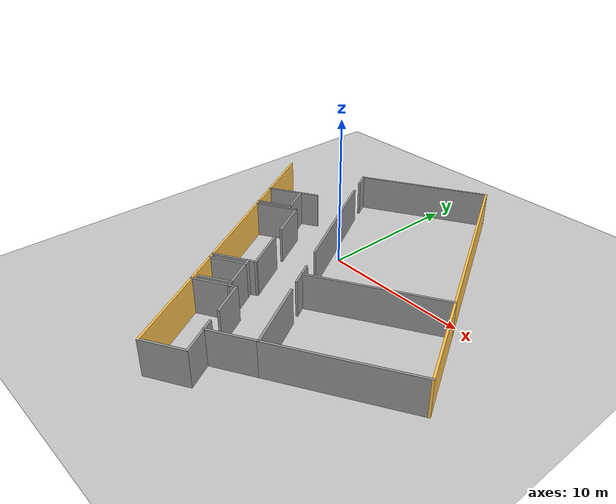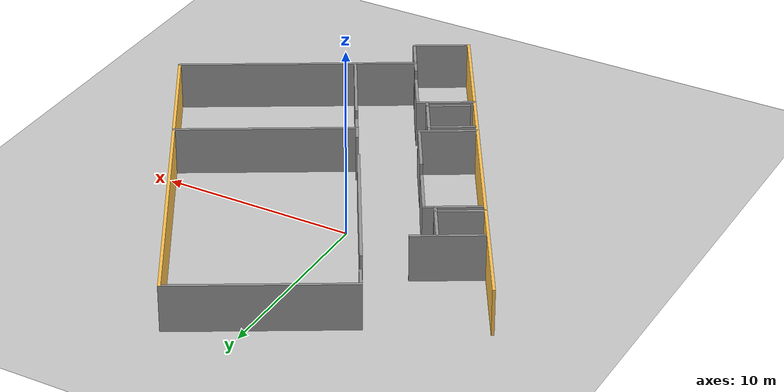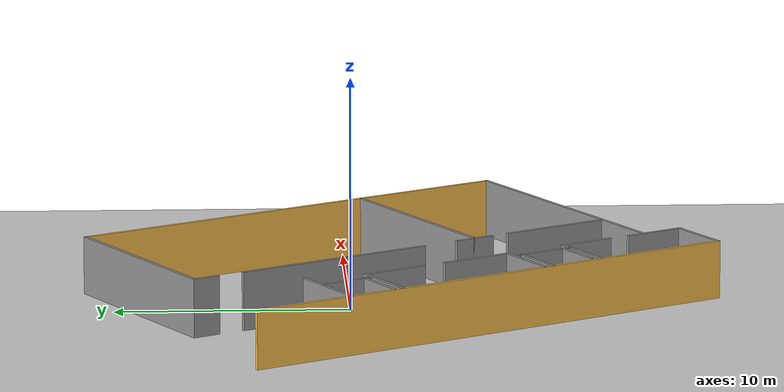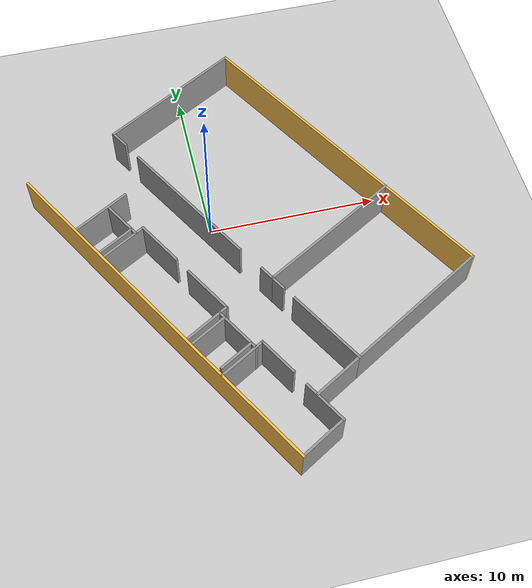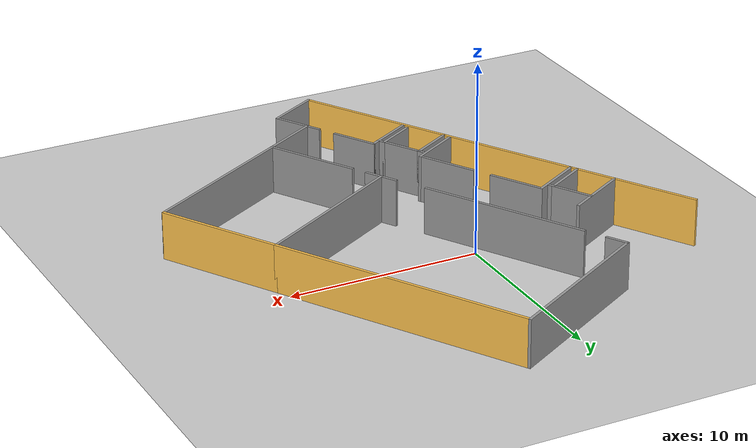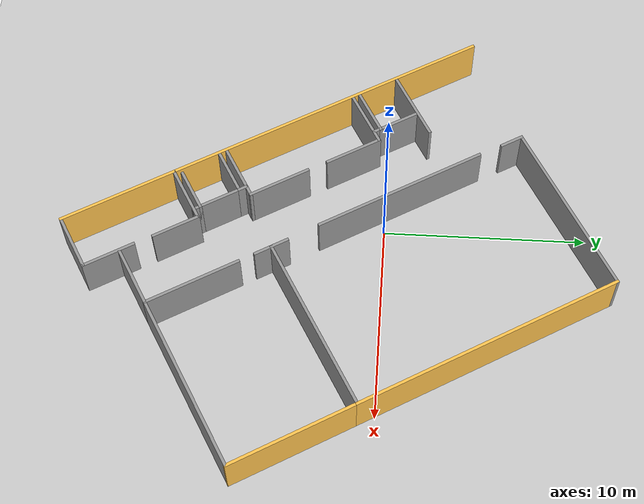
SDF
<sdf version="1.6">
 <world name="default">
  <light name="sun" type="directional">
   <pose>0 0 10 0 -0 0</pose>
   <diffuse>0.8 0.8 0.8 1</diffuse>
   <specular>0.1 0.1 0.1 1</specular>
   <attenuation>
    <range>1000</range>
    <constant>0.9</constant>
    <linear>0.01</linear>
    <quadratic>0.001</quadratic>
   </attenuation>
   <direction>-0.5 0.5 -1</direction>
  </light>
  <model name="ground_plane">
   <static>1</static>
   <link name="link">
    <collision name="collision">
     <geometry><plane><normal>0 0 1</normal><size>100 100</size></plane></geometry>
     <surface><friction><ode><mu>100</mu><mu2>50</mu2></ode></friction></surface>
    </collision>
    <visual name="visual">
     <cast_shadows>0</cast_shadows>
     <geometry><plane><normal>0 0 1</normal><size>100 100</size></plane></geometry>
     <material>
      <script><uri>file://media/materials/scripts/gazebo.material</uri><name>Gazebo/Grey</name></script>
     </material>
    </visual>
   </link>
  </model>
  <gravity>0 0 -9.8</gravity>
  <magnetic_field>6e-06 2.3e-05 -4.2e-05</magnetic_field>
  <atmosphere type="adiabatic"/>
  <physics name="default_physics" default="0" type="ode">
   <max_step_size>0.001</max_step_size>
   <real_time_factor>1</real_time_factor>
   <real_time_update_rate>1000</real_time_update_rate>
  </physics>
  <scene><ambient>0.4 0.4 0.4 1</ambient><background>0.7 0.7 0.7 1</background><shadows>1</shadows></scene>
  <spherical_coordinates>
   <surface_model>EARTH_WGS84</surface_model>
   <latitude_deg>0</latitude_deg>
   <longitude_deg>0</longitude_deg>
   <elevation>0</elevation>
   <heading_deg>0</heading_deg>
  </spherical_coordinates>
  <model name="model">
   <pose>1.83275 -2.24859 0 0 -0 0</pose>
   <link name="Wall_0">
    <collision name="Wall_0_Collision">
     <geometry><box><size>9.25 0.15 2.5</size></box></geometry>
     <pose>0 0 1.25 0 -0 0</pose>
    </collision>
    <visual name="Wall_0_Visual">
     <pose>0 0 1.25 0 -0 0</pose>
     <geometry><box><size>9.25 0.15 2.5</size></box></geometry>
     <material>
      <script><uri>file://media/materials/scripts/gazebo.material</uri><name>Gazebo/Grey</name></script>
      <ambient>1 1 1 1</ambient>
     </material>
     <meta><layer>0</layer></meta>
    </visual>
    <pose>4.53547 -0.839683 0 0 -0 0.523599</pose>
   </link>
   <link name="Wall_1">
    <collision name="Wall_1_Collision">
     <geometry><box><size>14 0.15 2.5</size></box></geometry>
     <pose>0 0 1.25 0 -0 0</pose>
    </collision>
    <visual name="Wall_1_Visual">
     <pose>0 0 1.25 0 -0 0</pose>
     <geometry><box><size>14 0.15 2.5</size></box></geometry>
     <material>
      <script><uri>file://media/materials/scripts/gazebo.material</uri><name>Gazebo/Grey</name></script>
      <ambient>1 0.764706 0.305882 1</ambient>
     </material>
     <meta><layer>0</layer></meta>
    </visual>
    <pose>5.01338 7.43254 0 0 -0 2.0944</pose>
   </link>
   <link name="Wall_10">
    <collision name="Wall_10_Collision">
     <geometry><box><size>9.25 0.15 2.5</size></box></geometry>
     <pose>0 0 1.25 0 -0 0</pose>
    </collision>
    <visual name="Wall_10_Visual">
     <pose>0 0 1.25 0 -0 0</pose>
     <geometry><box><size>9.25 0.15 2.5</size></box></geometry>
     <material>
      <script><uri>file://media/materials/scripts/gazebo.material</uri><name>Gazebo/Grey</name></script>
      <ambient>1 1 1 1</ambient>
     </material>
     <meta><layer>0</layer></meta>
    </visual>
    <pose>7.83547 -6.55545 0 0 0 -2.61799</pose>
   </link>
   <link name="Wall_11">
    <collision name="Wall_11_Collision">
     <geometry><box><size>5 0.15 2.5</size></box></geometry>
     <pose>0 0 1.25 0 -0 0</pose>
    </collision>
    <visual name="Wall_11_Visual">
     <pose>0 0 1.25 0 -0 0</pose>
     <geometry><box><size>5 0.15 2.5</size></box></geometry>
     <material>
      <script><uri>file://media/materials/scripts/gazebo.material</uri><name>Gazebo/Grey</name></script>
      <ambient>1 1 1 1</ambient>
     </material>
     <meta><layer>0</layer></meta>
    </visual>
    <pose>2.68255 -6.73034 0 0 -0 2.0944</pose>
   </link>
   <link name="Wall_13">
    <collision name="Wall_13_Collision">
     <geometry><box><size>1 0.15 2.5</size></box></geometry>
     <pose>0 0 1.25 0 -0 0</pose>
    </collision>
    <visual name="Wall_13_Visual">
     <pose>0 0 1.25 0 -0 0</pose>
     <geometry><box><size>1 0.15 2.5</size></box></geometry>
     <material>
      <script><uri>file://media/materials/scripts/gazebo.material</uri><name>Gazebo/Grey</name></script>
      <ambient>1 1 1 1</ambient>
     </material>
     <meta><layer>0</layer></meta>
    </visual>
    <pose>0.80755 -3.48274 0 0 0 -1.0472</pose>
   </link>
   <link name="Wall_18">
    <collision name="Wall_18_Collision">
     <geometry><box><size>23 0.15 2.5</size></box></geometry>
     <pose>0 0 1.25 0 -0 0</pose>
    </collision>
    <visual name="Wall_18_Visual">
     <pose>0 0 1.25 0 -0 0</pose>
     <geometry><box><size>23 0.15 2.5</size></box></geometry>
     <material>
      <script><uri>file://media/materials/scripts/gazebo.material</uri><name>Gazebo/Grey</name></script>
      <ambient>1 0.764706 0.305882 1</ambient>
     </material>
     <meta><layer>0</layer></meta>
    </visual>
    <pose>-6.06338 -3.53543 0 0 0 -1.0472</pose>
   </link>
   <link name="Wall_19">
    <collision name="Wall_19_Collision">
     <geometry><box><size>3 0.15 2.5</size></box></geometry>
     <pose>0 0 1.25 0 -0 0</pose>
    </collision>
    <visual name="Wall_19_Visual">
     <pose>0 0 1.25 0 -0 0</pose>
     <geometry><box><size>3 0.15 2.5</size></box></geometry>
     <material>
      <script><uri>file://media/materials/scripts/gazebo.material</uri><name>Gazebo/Grey</name></script>
      <ambient>1 1 1 1</ambient>
     </material>
     <meta><layer>0</layer></meta>
    </visual>
    <pose>0.883205 -12.7173 0 0 -0 0.523599</pose>
   </link>
   <link name="Wall_2">
    <collision name="Wall_2_Collision">
     <geometry><box><size>9.25 0.15 2.5</size></box></geometry>
     <pose>0 0 1.25 0 -0 0</pose>
    </collision>
    <visual name="Wall_2_Visual">
     <pose>0 0 1.25 0 -0 0</pose>
     <geometry><box><size>9.25 0.15 2.5</size></box></geometry>
     <material>
      <script><uri>file://media/materials/scripts/gazebo.material</uri><name>Gazebo/Grey</name></script>
      <ambient>1 1 1 1</ambient>
     </material>
     <meta><layer>0</layer></meta>
    </visual>
    <pose>-2.38953 11.1548 0 0 0 -2.61799</pose>
   </link>
   <link name="Wall_22">
    <collision name="Wall_22_Collision">
     <geometry><box><size>3.75 0.15 2.5</size></box></geometry>
     <pose>0 0 1.25 0 -0 0</pose>
    </collision>
    <visual name="Wall_22_Visual">
     <pose>0 0 1.25 0 -0 0</pose>
     <geometry><box><size>3.75 0.15 2.5</size></box></geometry>
     <material>
      <script><uri>file://media/materials/scripts/gazebo.material</uri><name>Gazebo/Grey</name></script>
      <ambient>1 1 1 1</ambient>
     </material>
     <meta><layer>0</layer></meta>
    </visual>
    <pose>-7.95881 3.37928 0 0 0 -2.61799</pose>
   </link>
   <link name="Wall_25">
    <collision name="Wall_25_Collision">
     <geometry><box><size>2.5 0.15 2.5</size></box></geometry>
     <pose>0 0 1.25 0 -0 0</pose>
    </collision>
    <visual name="Wall_25_Visual">
     <pose>0 0 1.25 0 -0 0</pose>
     <geometry><box><size>2.5 0.15 2.5</size></box></geometry>
     <material>
      <script><uri>file://media/materials/scripts/gazebo.material</uri><name>Gazebo/Grey</name></script>
      <ambient>1 1 1 1</ambient>
     </material>
     <meta><layer>0</layer></meta>
    </visual>
    <pose>-7.43644 1.24035 0 0 -0 0.523599</pose>
   </link>
   <link name="Wall_26">
    <collision name="Wall_26_Collision">
     <geometry><box><size>2.25 0.15 2.5</size></box></geometry>
     <pose>0 0 1.25 0 -0 0</pose>
    </collision>
    <visual name="Wall_26_Visual">
     <pose>0 0 1.25 0 -0 0</pose>
     <geometry><box><size>2.25 0.15 2.5</size></box></geometry>
     <material>
      <script><uri>file://media/materials/scripts/gazebo.material</uri><name>Gazebo/Grey</name></script>
      <ambient>1 1 1 1</ambient>
     </material>
     <meta><layer>0</layer></meta>
    </visual>
    <pose>-6.94386 2.73717 0 0 -0 2.0944</pose>
   </link>
   <link name="Wall_28">
    <collision name="Wall_28_Collision">
     <geometry><box><size>3 0.15 2.5</size></box></geometry>
     <pose>0 0 1.25 0 -0 0</pose>
    </collision>
    <visual name="Wall_28_Visual">
     <pose>0 0 1.25 0 -0 0</pose>
     <geometry><box><size>3 0.15 2.5</size></box></geometry>
     <material>
      <script><uri>file://media/materials/scripts/gazebo.material</uri><name>Gazebo/Grey</name></script>
      <ambient>1 1 1 1</ambient>
     </material>
     <meta><layer>0</layer></meta>
    </visual>
    <pose>-6.99868 1.06364 0 0 -0 0.523599</pose>
   </link>
   <link name="Wall_29">
    <collision name="Wall_29_Collision">
     <geometry><box><size>3 0.15 2.5</size></box></geometry>
     <pose>0 0 1.25 0 -0 0</pose>
    </collision>
    <visual name="Wall_29_Visual">
     <pose>0 0 1.25 0 -0 0</pose>
     <geometry><box><size>3 0.15 2.5</size></box></geometry>
     <material>
      <script><uri>file://media/materials/scripts/gazebo.material</uri><name>Gazebo/Grey</name></script>
      <ambient>1 1 1 1</ambient>
     </material>
     <meta><layer>0</layer></meta>
    </visual>
    <pose>-5.05209 0.542055 0 0 0 -1.0472</pose>
   </link>
   <link name="Wall_3">
    <collision name="Wall_3_Collision">
     <geometry><box><size>1.25 0.15 2.5</size></box></geometry>
     <pose>0 0 1.25 0 -0 0</pose>
    </collision>
    <visual name="Wall_3_Visual">
     <pose>0 0 1.25 0 -0 0</pose>
     <geometry><box><size>1.25 0.15 2.5</size></box></geometry>
     <material>
      <script><uri>file://media/materials/scripts/gazebo.material</uri><name>Gazebo/Grey</name></script>
      <ambient>1 1 1 1</ambient>
     </material>
     <meta><layer>0</layer></meta>
    </visual>
    <pose>-6.05495 8.40345 0 0 0 -1.0472</pose>
   </link>
   <link name="Wall_31">
    <collision name="Wall_31_Collision">
     <geometry><box><size>3.25 0.15 2.5</size></box></geometry>
     <pose>0 0 1.25 0 -0 0</pose>
    </collision>
    <visual name="Wall_31_Visual">
     <pose>0 0 1.25 0 -0 0</pose>
     <geometry><box><size>3.25 0.15 2.5</size></box></geometry>
     <material>
      <script><uri>file://media/materials/scripts/gazebo.material</uri><name>Gazebo/Grey</name></script>
      <ambient>1 1 1 1</ambient>
     </material>
     <meta><layer>0</layer></meta>
    </visual>
    <pose>-3.03084 -3.0025 0 0 0 -1.0472</pose>
   </link>
   <link name="Wall_32">
    <collision name="Wall_32_Collision">
     <geometry><box><size>3 0.15 2.5</size></box></geometry>
     <pose>0 0 1.25 0 -0 0</pose>
    </collision>
    <visual name="Wall_32_Visual">
     <pose>0 0 1.25 0 -0 0</pose>
     <geometry><box><size>3 0.15 2.5</size></box></geometry>
     <material>
      <script><uri>file://media/materials/scripts/gazebo.material</uri><name>Gazebo/Grey</name></script>
      <ambient>1 1 1 1</ambient>
     </material>
     <meta><layer>0</layer></meta>
    </visual>
    <pose>-3.48992 -5.05734 0 0 0 -2.61799</pose>
   </link>
   <link name="Wall_34">
    <collision name="Wall_34_Collision">
     <geometry><box><size>2.5 0.15 2.5</size></box></geometry>
     <pose>0 0 1.25 0 -0 0</pose>
    </collision>
    <visual name="Wall_34_Visual">
     <pose>0 0 1.25 0 -0 0</pose>
     <geometry><box><size>2.5 0.15 2.5</size></box></geometry>
     <material>
      <script><uri>file://media/materials/scripts/gazebo.material</uri><name>Gazebo/Grey</name></script>
      <ambient>1 1 1 1</ambient>
     </material>
     <meta><layer>0</layer></meta>
    </visual>
    <pose>-3.51024 -5.52138 0 0 -0 0.523599</pose>
   </link>
   <link name="Wall_35">
    <collision name="Wall_35_Collision">
     <geometry><box><size>2.25 0.15 2.5</size></box></geometry>
     <pose>0 0 1.25 0 -0 0</pose>
    </collision>
    <visual name="Wall_35_Visual">
     <pose>0 0 1.25 0 -0 0</pose>
     <geometry><box><size>2.25 0.15 2.5</size></box></geometry>
     <material>
      <script><uri>file://media/materials/scripts/gazebo.material</uri><name>Gazebo/Grey</name></script>
      <ambient>1 1 1 1</ambient>
     </material>
     <meta><layer>0</layer></meta>
    </visual>
    <pose>-1.96766 -5.84321 0 0 0 -1.0472</pose>
   </link>
   <link name="Wall_36">
    <collision name="Wall_36_Collision">
     <geometry><box><size>2.25 0.15 2.5</size></box></geometry>
     <pose>0 0 1.25 0 -0 0</pose>
    </collision>
    <visual name="Wall_36_Visual">
     <pose>0 0 1.25 0 -0 0</pose>
     <geometry><box><size>2.25 0.15 2.5</size></box></geometry>
     <material>
      <script><uri>file://media/materials/scripts/gazebo.material</uri><name>Gazebo/Grey</name></script>
      <ambient>1 1 1 1</ambient>
     </material>
     <meta><layer>0</layer></meta>
    </visual>
    <pose>-2.35199 -7.27753 0 0 0 -2.61799</pose>
   </link>
   <link name="Wall_38">
    <collision name="Wall_38_Collision">
     <geometry><box><size>0.5 0.15 2.5</size></box></geometry>
     <pose>0 0 1.25 0 -0 0</pose>
    </collision>
    <visual name="Wall_38_Visual">
     <pose>0 0 1.25 0 -0 0</pose>
     <geometry><box><size>0.5 0.15 2.5</size></box></geometry>
     <material>
      <script><uri>file://media/materials/scripts/gazebo.material</uri><name>Gazebo/Grey</name></script>
      <ambient>1 1 1 1</ambient>
     </material>
     <meta><layer>0</layer></meta>
    </visual>
    <pose>-2.58016 -4.78232 0 0 -0 2.0944</pose>
   </link>
   <link name="Wall_40">
    <collision name="Wall_40_Collision">
     <geometry><box><size>0.5 0.15 2.5</size></box></geometry>
     <pose>0 0 1.25 0 -0 0</pose>
    </collision>
    <visual name="Wall_40_Visual">
     <pose>0 0 1.25 0 -0 0</pose>
     <geometry><box><size>0.5 0.15 2.5</size></box></geometry>
     <material>
      <script><uri>file://media/materials/scripts/gazebo.material</uri><name>Gazebo/Grey</name></script>
      <ambient>1 1 1 1</ambient>
     </material>
     <meta><layer>0</layer></meta>
    </visual>
    <pose>-1.35516 -6.90409 0 0 0 -1.0472</pose>
   </link>
   <link name="Wall_42">
    <collision name="Wall_42_Collision">
     <geometry><box><size>0.5 0.15 2.5</size></box></geometry>
     <pose>0 0 1.25 0 -0 0</pose>
    </collision>
    <visual name="Wall_42_Visual">
     <pose>0 0 1.25 0 -0 0</pose>
     <geometry><box><size>0.5 0.15 2.5</size></box></geometry>
     <material>
      <script><uri>file://media/materials/scripts/gazebo.material</uri><name>Gazebo/Grey</name></script>
      <ambient>1 1 1 1</ambient>
     </material>
     <meta><layer>0</layer></meta>
    </visual>
    <pose>-6.33136 1.67629 0 0 0 -1.0472</pose>
   </link>
   <link name="Wall_44">
    <collision name="Wall_44_Collision">
     <geometry><box><size>3 0.15 2.5</size></box></geometry>
     <pose>0 0 1.25 0 -0 0</pose>
    </collision>
    <visual name="Wall_44_Visual">
     <pose>0 0 1.25 0 -0 0</pose>
     <geometry><box><size>3 0.15 2.5</size></box></geometry>
     <material>
      <script><uri>file://media/materials/scripts/gazebo.material</uri><name>Gazebo/Grey</name></script>
      <ambient>1 1 1 1</ambient>
     </material>
     <meta><layer>0</layer></meta>
    </visual>
    <pose>-2.08938 -7.51738 0 0 -0 0.523599</pose>
   </link>
   <link name="Wall_45">
    <collision name="Wall_45_Collision">
     <geometry><box><size>2.5 0.15 2.5</size></box></geometry>
     <pose>0 0 1.25 0 -0 0</pose>
    </collision>
    <visual name="Wall_45_Visual">
     <pose>0 0 1.25 0 -0 0</pose>
     <geometry><box><size>2.5 0.15 2.5</size></box></geometry>
     <material>
      <script><uri>file://media/materials/scripts/gazebo.material</uri><name>Gazebo/Grey</name></script>
      <ambient>1 1 1 1</ambient>
     </material>
     <meta><layer>0</layer></meta>
    </visual>
    <pose>-0.267795 -7.82246 0 0 0 -1.0472</pose>
   </link>
   <link name="Wall_48">
    <collision name="Wall_48_Collision">
     <geometry><box><size>2.75 0.15 2.5</size></box></geometry>
     <pose>0 0 1.25 0 -0 0</pose>
    </collision>
    <visual name="Wall_48_Visual">
     <pose>0 0 1.25 0 -0 0</pose>
     <geometry><box><size>2.75 0.15 2.5</size></box></geometry>
     <material>
      <script><uri>file://media/materials/scripts/gazebo.material</uri><name>Gazebo/Grey</name></script>
      <ambient>1 1 1 1</ambient>
     </material>
     <meta><layer>0</layer></meta>
    </visual>
    <pose>1.46729 -10.8789 0 0 -0 2.0944</pose>
   </link>
   <link name="Wall_5">
    <collision name="Wall_5_Collision">
     <geometry><box><size>9 0.15 2.5</size></box></geometry>
     <pose>0 0 1.25 0 -0 0</pose>
    </collision>
    <visual name="Wall_5_Visual">
     <pose>0 0 1.25 0 -0 0</pose>
     <geometry><box><size>9 0.15 2.5</size></box></geometry>
     <material>
      <script><uri>file://media/materials/scripts/gazebo.material</uri><name>Gazebo/Grey</name></script>
      <ambient>1 1 1 1</ambient>
     </material>
     <meta><layer>0</layer></meta>
    </visual>
    <pose>-2.96339 2.96071 0 0 0 -1.0472</pose>
   </link>
   <link name="Wall_51">
    <collision name="Wall_51_Collision">
     <geometry><box><size>3.25 0.15 2.5</size></box></geometry>
     <pose>0 0 1.25 0 -0 0</pose>
    </collision>
    <visual name="Wall_51_Visual">
     <pose>0 0 1.25 0 -0 0</pose>
     <geometry><box><size>3.25 0.15 2.5</size></box></geometry>
     <material>
      <script><uri>file://media/materials/scripts/gazebo.material</uri><name>Gazebo/Grey</name></script>
      <ambient>1 1 1 1</ambient>
     </material>
     <meta><layer>0</layer></meta>
    </visual>
    <pose>2.55271 -9.60545 0 0 0 -2.61799</pose>
   </link>
   <link name="Wall_7">
    <collision name="Wall_7_Collision">
     <geometry><box><size>1 0.15 2.5</size></box></geometry>
     <pose>0 0 1.25 0 -0 0</pose>
    </collision>
    <visual name="Wall_7_Visual">
     <pose>0 0 1.25 0 -0 0</pose>
     <geometry><box><size>1 0.15 2.5</size></box></geometry>
     <material>
      <script><uri>file://media/materials/scripts/gazebo.material</uri><name>Gazebo/Grey</name></script>
      <ambient>1 1 1 1</ambient>
     </material>
     <meta><layer>0</layer></meta>
    </visual>
    <pose>0.38255 -2.74662 0 0 0 -1.0472</pose>
   </link>
   <link name="Wall_9">
    <collision name="Wall_9_Collision">
     <geometry><box><size>6.75 0.15 2.5</size></box></geometry>
     <pose>0 0 1.25 0 -0 0</pose>
    </collision>
    <visual name="Wall_9_Visual">
     <pose>0 0 1.25 0 -0 0</pose>
     <geometry><box><size>6.75 0.15 2.5</size></box></geometry>
     <material>
      <script><uri>file://media/materials/scripts/gazebo.material</uri><name>Gazebo/Grey</name></script>
      <ambient>1 0.764706 0.305882 1</ambient>
     </material>
     <meta><layer>0</layer></meta>
    </visual>
    <pose>10.1259 -1.42257 0 0 0 -1.0472</pose>
   </link>
   <static>1</static>
  </model>
 </world>
</sdf>
